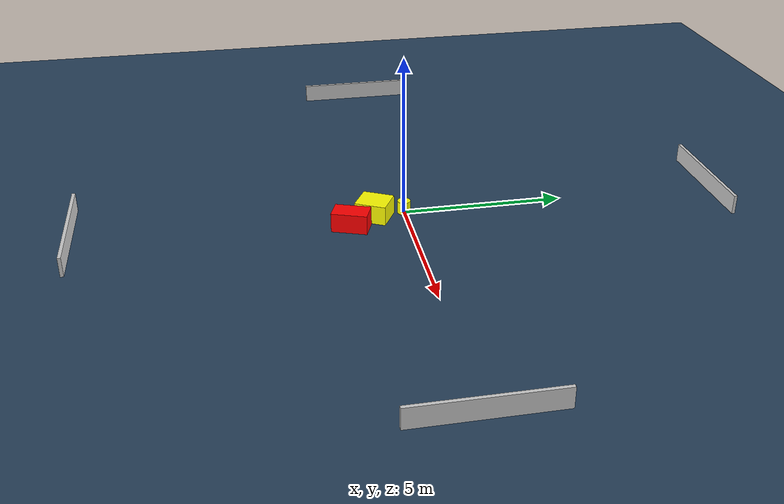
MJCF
<?xml version="1.0" ?>
<mujoco model="generated_environment">
  <option timestep="0.01" integrator="RK4" cone="elliptic"/>
  <default>
    <geom density="1"/>
  </default>
  <asset>
    <texture builtin="gradient" height="3072" name="skybox" rgb1="0.3 0.5 0.7" rgb2="0 0 0" type="skybox" width="512"/>
    <texture builtin="checker" height="300" name="groundplane" rgb1="0.2 0.3 0.4" rgb2="0.1 0.2 0.3" type="2d" width="300"/>
    <material name="groundplane" reflectance="0.2" texrepeat="5 5" texture="groundplane"/>
  </asset>
  <worldbody>
    <light dir="0 0 -1" directional="true" pos="0 0 1.5"/>
    <geom condim="3" friction="0.5 0.005 0.001" material="groundplane" name="floor" pos="0 0 0" size="0 0 0.05" type="plane"/>
    <body name="walls">
      <geom name="wall_1" condim="4" pos="-10.0 0.0 0.3" rgba="0.800000011920929 0.800000011920929 0.800000011920929 1.0" size="0.05 2.0 0.3" type="box"/>
      <geom name="wall_2" condim="4" pos="10.0 0.0 0.3" rgba="0.800000011920929 0.800000011920929 0.800000011920929 1.0" size="0.05 2.0 0.3" type="box"/>
      <geom name="wall_3" condim="4" pos="0.0 -10.0 0.3" rgba="0.800000011920929 0.800000011920929 0.800000011920929 1.0" size="2.0 0.05 0.3" type="box"/>
      <geom name="wall_4" condim="4" pos="0.0 10.0 0.3" rgba="0.800000011920929 0.800000011920929 0.800000011920929 1.0" size="2.0 0.05 0.3" type="box"/>
    </body>
    <body name="robot">
      <joint name="joint_x" type="slide" pos="0 0 0" axis="1 0 0"/>
      <joint name="joint_y" type="slide" pos="0 0 0" axis="0 1 0"/>
      <geom name="robot" type="cylinder" pos="0.0 0.0 0.2" size="0.2 0.2 0.0" mass="5.0" friction="1.0 0.005 0.0001" condim="4" rgba="1.0 1.0 0.0 1.0"/>
    </body>
    <body name="obstacle_1_movable">
      <geom name="obstacle_1_movable" condim="4" pos="0.13858421608298493 -0.9448726477298139 0.3" euler="0 0 241.91274128827888" friction="0.0 0.005 0.001" rgba="1.0 1.0 0.0 1.0" size="0.4888119686362789 0.43557702175271756 0.3" type="box" mass="0.1"/>
      <joint type="free"/>
    </body>
    <body name="obstacle_2_static">
      <geom name="obstacle_2_static" condim="4" pos="0.7186430912301532 -1.746124385723398 0.3" euler="0 0 159.62105605467445" friction="0.0 0.005 0.001" rgba="1.0 0.0 0.0 1.0" size="0.3277704475636226 0.5495076804760785 0.3" type="box"/>
    </body>
  </worldbody>
  <actuator>
    <motor name="actuator_x" joint="joint_x" gear="1" ctrlrange="-1 1"/>
    <motor name="actuator_y" joint="joint_y" gear="1" ctrlrange="-1 1"/>
  </actuator>
</mujoco>
